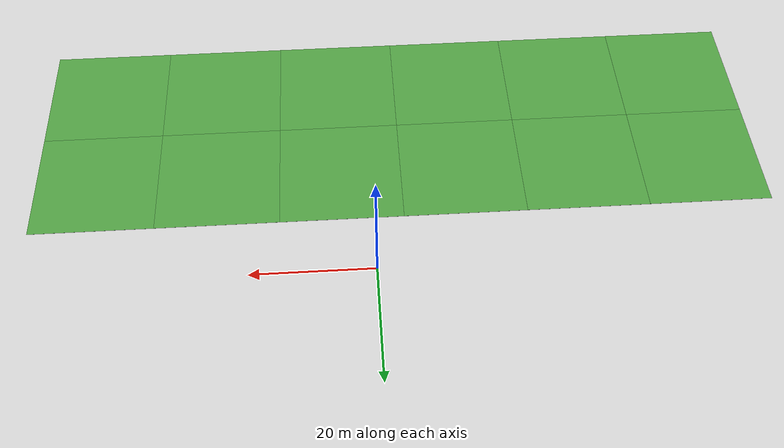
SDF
<sdf version="1.6">
 <world name="default">
  <model name="ground_plane">
   <static>1</static>
   <link name="link">
    <collision name="collision">
     <geometry><plane><normal>0 0 1</normal><size>100 100</size></plane></geometry>
     <surface><friction><ode><mu>100</mu><mu2>50</mu2></ode></friction></surface>
    </collision>
    <visual name="visual">
     <cast_shadows>0</cast_shadows>
     <geometry><plane><normal>0 0 1</normal><size>100 100</size></plane></geometry>
     <material>
      <script><uri>file://media/materials/scripts/gazebo.material</uri><name>Gazebo/Grey</name></script>
     </material>
    </visual>
    <velocity_decay><linear>0</linear><angular>0</angular></velocity_decay>
   </link>
  </model>
  <model name="grass_plane">
   <static>1</static>
   <link name="link">
    <collision name="collision">
     <geometry><plane><normal>0 0 1</normal><size>500 500</size></plane></geometry>
     <surface><friction><ode><mu>0.5</mu><mu2>0.5</mu2></ode></friction></surface>
    </collision>
    <visual name="visual_0">
     <pose>-40 -40 0 0 -0 0</pose>
     <cast_shadows>0</cast_shadows>
     <geometry><plane><normal>0 0 1</normal><size>20 20</size></plane></geometry>
     <material>
      <script>
       <uri>model://grass_plane/materials/scripts</uri>
       <uri>model://grass_plane/materials/textures</uri>
       <name>vrc/grass</name>
      </script>
     </material>
    </visual>
    <visual name="visual_1">
     <pose>-20 -40 0 0 -0 0</pose>
     <cast_shadows>0</cast_shadows>
     <geometry><plane><normal>0 0 1</normal><size>20 20</size></plane></geometry>
     <material>
      <script>
       <uri>model://grass_plane/materials/scripts</uri>
       <uri>model://grass_plane/materials/textures</uri>
       <name>vrc/grass</name>
      </script>
     </material>
    </visual>
    <visual name="visual_2">
     <pose>0 -40 0 0 -0 0</pose>
     <cast_shadows>0</cast_shadows>
     <geometry><plane><normal>0 0 1</normal><size>20 20</size></plane></geometry>
     <material>
      <script>
       <uri>model://grass_plane/materials/scripts</uri>
       <uri>model://grass_plane/materials/textures</uri>
       <name>vrc/grass</name>
      </script>
     </material>
    </visual>
    <visual name="visual_3">
     <pose>20 -40 0 0 -0 0</pose>
     <cast_shadows>0</cast_shadows>
     <geometry><plane><normal>0 0 1</normal><size>20 20</size></plane></geometry>
     <material>
      <script>
       <uri>model://grass_plane/materials/scripts</uri>
       <uri>model://grass_plane/materials/textures</uri>
       <name>vrc/grass</name>
      </script>
     </material>
    </visual>
    <visual name="visual_4">
     <pose>40 -40 0 0 -0 0</pose>
     <cast_shadows>0</cast_shadows>
     <geometry><plane><normal>0 0 1</normal><size>20 20</size></plane></geometry>
     <material>
      <script>
       <uri>model://grass_plane/materials/scripts</uri>
       <uri>model://grass_plane/materials/textures</uri>
       <name>vrc/grass</name>
      </script>
     </material>
    </visual>
    <visual name="visual_5">
     <pose>60 -40 0 0 -0 0</pose>
     <cast_shadows>0</cast_shadows>
     <geometry><plane><normal>0 0 1</normal><size>20 20</size></plane></geometry>
     <material>
      <script>
       <uri>model://grass_plane/materials/scripts</uri>
       <uri>model://grass_plane/materials/textures</uri>
       <name>vrc/grass</name>
      </script>
     </material>
    </visual>
    <visual name="visual_6">
     <pose>-40 -20 0 0 -0 0</pose>
     <cast_shadows>0</cast_shadows>
     <geometry><plane><normal>0 0 1</normal><size>20 20</size></plane></geometry>
     <material>
      <script>
       <uri>model://grass_plane/materials/scripts</uri>
       <uri>model://grass_plane/materials/textures</uri>
       <name>vrc/grass</name>
      </script>
     </material>
    </visual>
    <visual name="visual_7">
     <pose>-20 -20 0 0 -0 0</pose>
     <cast_shadows>0</cast_shadows>
     <geometry><plane><normal>0 0 1</normal><size>20 20</size></plane></geometry>
     <material>
      <script>
       <uri>model://grass_plane/materials/scripts</uri>
       <uri>model://grass_plane/materials/textures</uri>
       <name>vrc/grass</name>
      </script>
     </material>
    </visual>
    <visual name="visual_8">
     <pose>0 -20 0 0 -0 0</pose>
     <cast_shadows>0</cast_shadows>
     <geometry><plane><normal>0 0 1</normal><size>20 20</size></plane></geometry>
     <material>
      <script>
       <uri>model://grass_plane/materials/scripts</uri>
       <uri>model://grass_plane/materials/textures</uri>
       <name>vrc/grass</name>
      </script>
     </material>
    </visual>
    <visual name="visual_9">
     <pose>20 -20 0 0 -0 0</pose>
     <cast_shadows>0</cast_shadows>
     <geometry><plane><normal>0 0 1</normal><size>20 20</size></plane></geometry>
     <material>
      <script>
       <uri>model://grass_plane/materials/scripts</uri>
       <uri>model://grass_plane/materials/textures</uri>
       <name>vrc/grass</name>
      </script>
     </material>
    </visual>
    <visual name="visual_10">
     <pose>40 -20 0 0 -0 0</pose>
     <cast_shadows>0</cast_shadows>
     <geometry><plane><normal>0 0 1</normal><size>20 20</size></plane></geometry>
     <material>
      <script>
       <uri>model://grass_plane/materials/scripts</uri>
       <uri>model://grass_plane/materials/textures</uri>
       <name>vrc/grass</name>
      </script>
     </material>
    </visual>
    <visual name="visual_11">
     <pose>60 -20 0 0 -0 0</pose>
     <cast_shadows>0</cast_shadows>
     <geometry><plane><normal>0 0 1</normal><size>20 20</size></plane></geometry>
     <material>
      <script>
       <uri>model://grass_plane/materials/scripts</uri>
       <uri>model://grass_plane/materials/textures</uri>
       <name>vrc/grass</name>
      </script>
     </material>
    </visual>
   </link>
   <pose>-14.8141 -0.024505 0.01 0 -0 0</pose>
  </model>
 </world>
</sdf>
